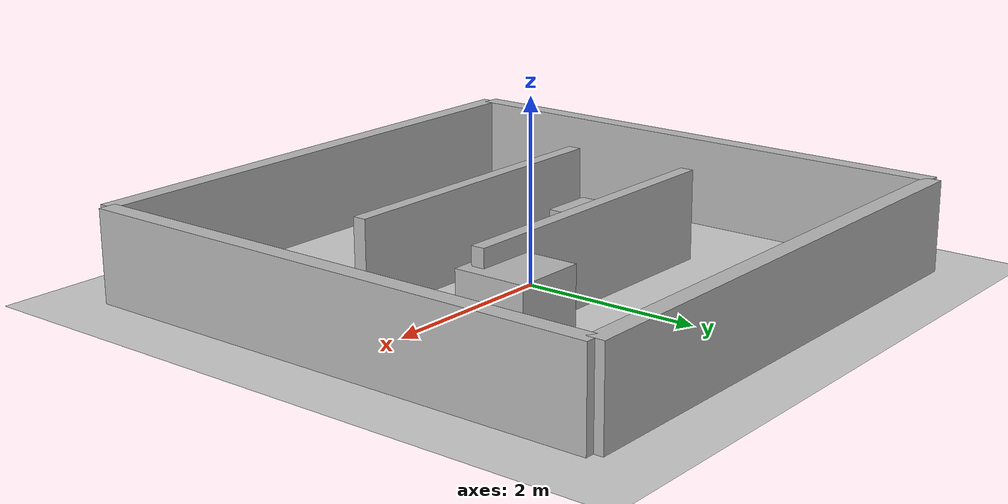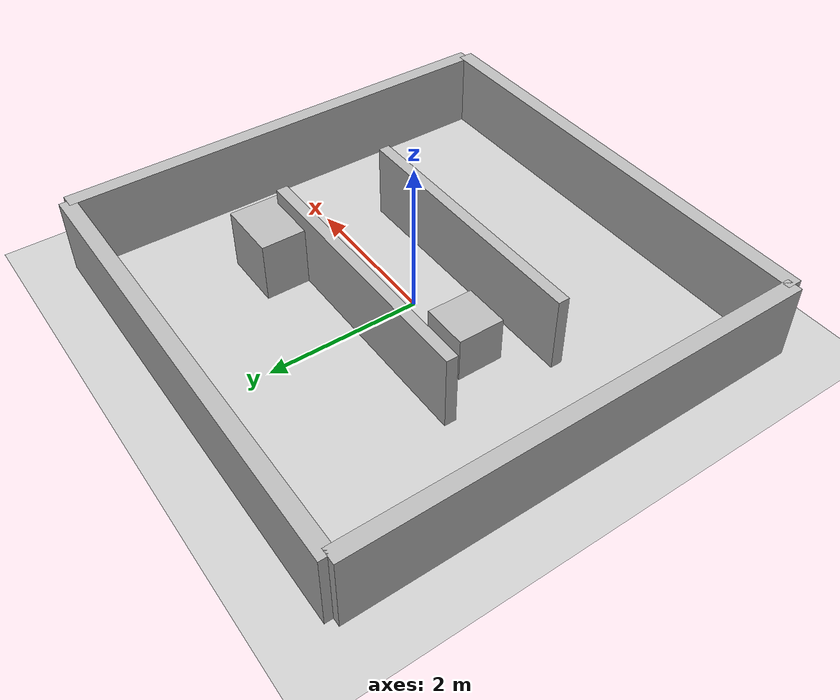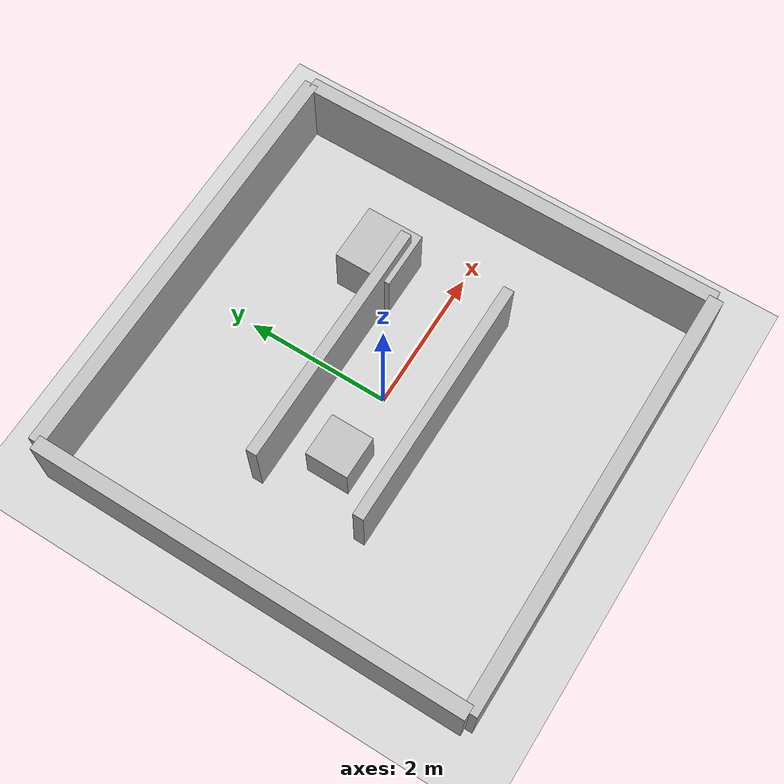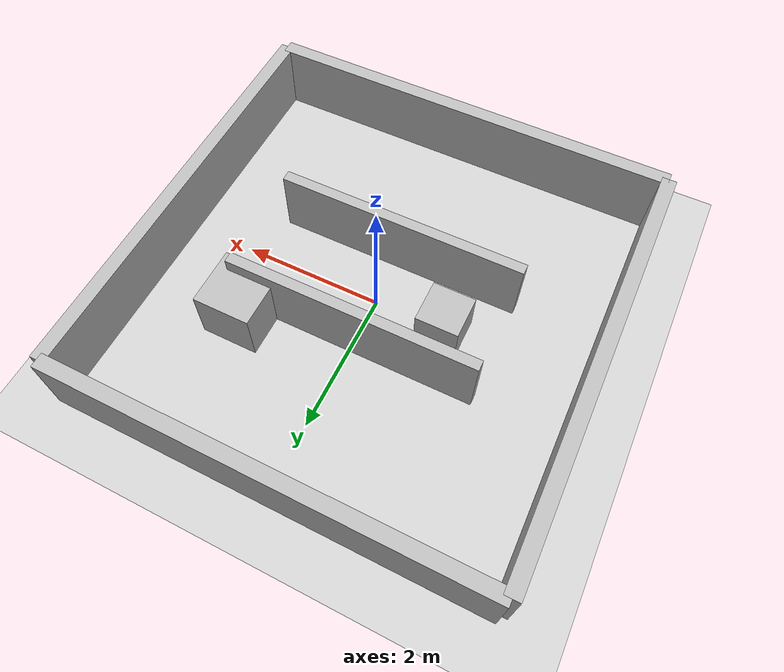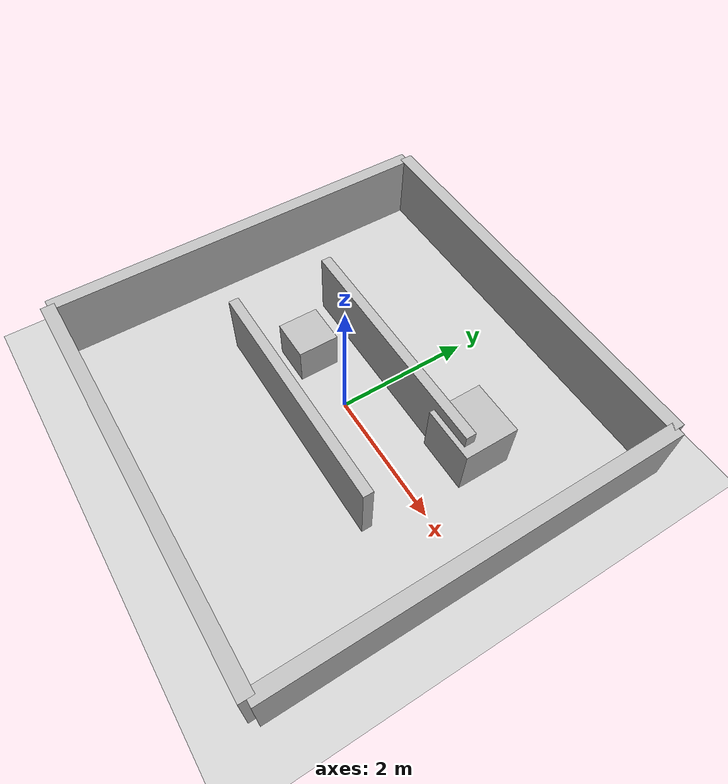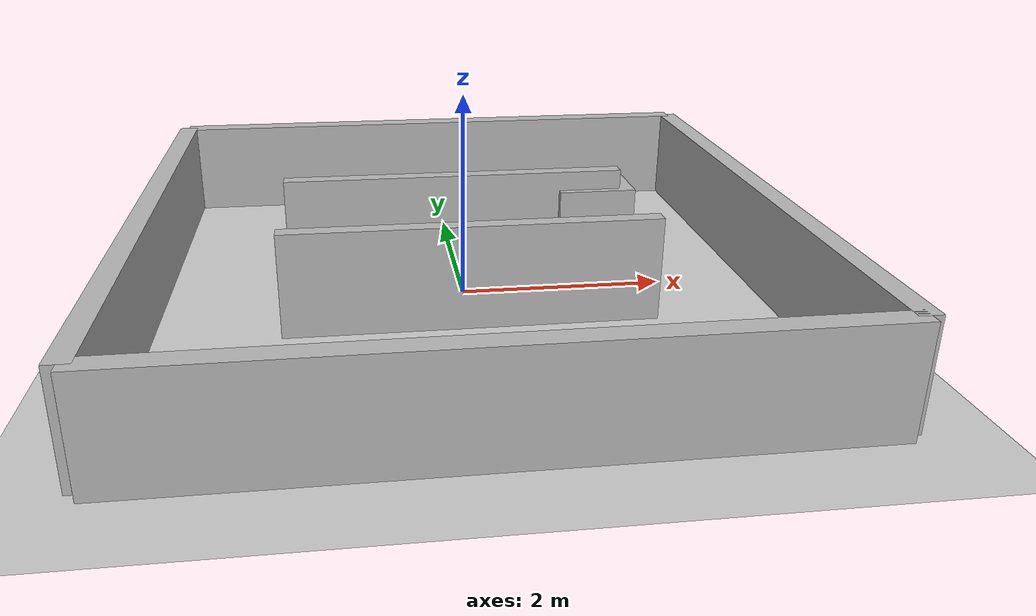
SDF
<?xml version="1.0" ?>

<sdf version="1.9">

  <world name="my_world">
<scene>
  <ambient>0.5 0.5 0.5 1</ambient>
  <background>0.8 0.8 0.8 1</background>
  <shadows>true</shadows>
</scene>

    <!-- Physics -->
    <physics name="1ms" type="ignored">
      <max_step_size>0.001</max_step_size>
      <real_time_factor>1.0</real_time_factor>
    </physics>

    <!-- Gazebo systems -->
    <plugin
      filename="gz-sim-physics-system"
      name="gz::sim::systems::Physics">
    </plugin>

    <plugin
      filename="gz-sim-user-commands-system"
      name="gz::sim::systems::UserCommands">
    </plugin>

    <plugin
      filename="gz-sim-scene-broadcaster-system"
      name="gz::sim::systems::SceneBroadcaster">
    </plugin>
    <plugin
      filename="gz-sim-sensors-system"
      name="gz::sim::systems::Sensors">
      <render_engine>ogre2</render_engine>
    </plugin>
    <!-- Sun -->
    <light type="directional" name="sun">
      <cast_shadows>true</cast_shadows>

      <pose>0 0 10 0 0 0</pose>

      <diffuse>1 1 1 1</diffuse>
<specular>0.1 0.1 0.1 1</specular>
<direction>-0.5 -0.5 -1</direction>
    </light>

    <!-- Ground -->
    <model name="ground_plane">

      <static>true</static>

      <link name="ground_link">

        <collision name="ground_collision">
          <geometry>
            <plane>
              <normal>0 0 1</normal>
              <size>20 20</size>
            </plane>
          </geometry>
        </collision>

        <visual name="ground_visual">
          <geometry>
            <plane>
              <normal>0 0 1</normal>
              <size>20 20</size>
            </plane>
          </geometry>
        </visual>

      </link>

    </model>
<!-- Wall 1 -->
<model name="wall_1">

  <static>true</static>

  <pose>0 3 0.5 0 0 0</pose>

  <link name="wall_link">

    <visual name="wall_visual">
      <geometry>
        <box>
          <size>6 0.2 1</size>
        </box>
      </geometry>
    </visual>

    <collision name="wall_collision">
      <geometry>
        <box>
          <size>6 0.2 1</size>
        </box>
      </geometry>
    </collision>

  </link>

</model>
<!-- Wall 2 -->
<model name="wall_2">

  <static>true</static>

  <pose>0 -3 0.5 0 0 0</pose>

  <link name="wall_link">

    <visual name="wall_visual">
      <geometry>
        <box>
          <size>6 0.2 1</size>
        </box>
      </geometry>
    </visual>

    <collision name="wall_collision">
      <geometry>
        <box>
          <size>6 0.2 1</size>
        </box>
      </geometry>
    </collision>

  </link>

</model>

<!-- Wall 3 - Left -->
<model name="wall_3">

  <static>true</static>

  <pose>-3 0 0.5 0 0 1.5708</pose>

  <link name="wall_link">

    <visual name="wall_visual">
      <geometry>
        <box>
          <size>6 0.2 1</size>
        </box>
      </geometry>
    </visual>

    <collision name="wall_collision">
      <geometry>
        <box>
          <size>6 0.2 1</size>
        </box>
      </geometry>
    </collision>

  </link>

</model>

<!-- Wall 4 - Right -->
<model name="wall_4">

  <static>true</static>

  <pose>3 0 0.5 0 0 1.5708</pose>

  <link name="wall_link">

    <visual name="wall_visual">
      <geometry>
        <box>
          <size>6 0.2 1</size>
        </box>
      </geometry>
    </visual>

    <collision name="wall_collision">
      <geometry>
        <box>
          <size>6 0.2 1</size>
        </box>
      </geometry>
    </collision>

  </link>

</model>

<!-- Obstacle 1 -->
<model name="box_1">
  <static>true</static>

  <pose>-1 0 0.3 0 0 0</pose>

  <link name="box_link">

    <visual name="box_visual">
      <geometry>
        <box>
          <size>0.6 0.6 0.6</size>
        </box>
      </geometry>
    </visual>

    <collision name="box_collision">
      <geometry>
        <box>
          <size>0.6 0.6 0.6</size>
        </box>
      </geometry>
    </collision>

  </link>
</model>

<!-- Obstacle 2 -->
<model name="box_2">
  <static>true</static>

  <pose>1.5 1 0.4 0 0 0</pose>

  <link name="box_link">

    <visual name="box_visual">
      <geometry>
        <box>
          <size>0.8 0.8 0.8</size>
        </box>
      </geometry>
    </visual>

    <collision name="box_collision">
      <geometry>
        <box>
          <size>0.8 0.8 0.8</size>
        </box>
      </geometry>
    </collision>

  </link>
</model>
<!-- Corridor Wall 1 -->
<model name="corridor_wall_1">
  <static>true</static>

  <pose>0 0.75 0.5 0 0 0</pose>

  <link name="wall_link">

    <visual name="wall_visual">
      <geometry>
        <box>
          <size>3.5 0.15 1</size>
        </box>
      </geometry>
    </visual>

    <collision name="wall_collision">
      <geometry>
        <box>
          <size>3.5 0.15 1</size>
        </box>
      </geometry>
    </collision>

  </link>
</model>

<!-- Corridor Wall 2 -->
<model name="corridor_wall_2">
  <static>true</static>

  <pose>0 -0.75 0.5 0 0 0</pose>

  <link name="wall_link">

    <visual name="wall_visual">
      <geometry>
        <box>
          <size>3.5 0.15 1</size>
        </box>
      </geometry>
    </visual>

    <collision name="wall_collision">
      <geometry>
        <box>
          <size>3.5 0.15 1</size>
        </box>
      </geometry>
    </collision>

  </link>
</model>
  </world>

</sdf>
